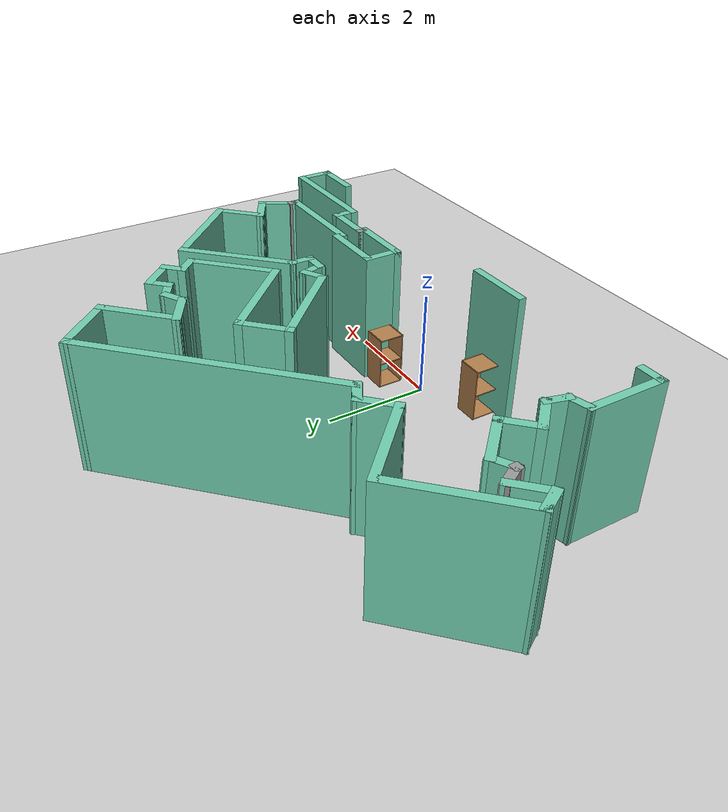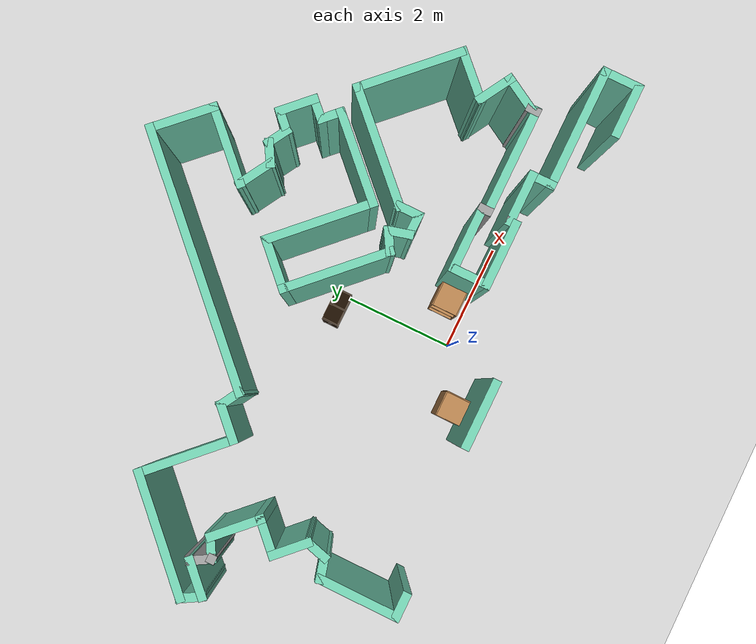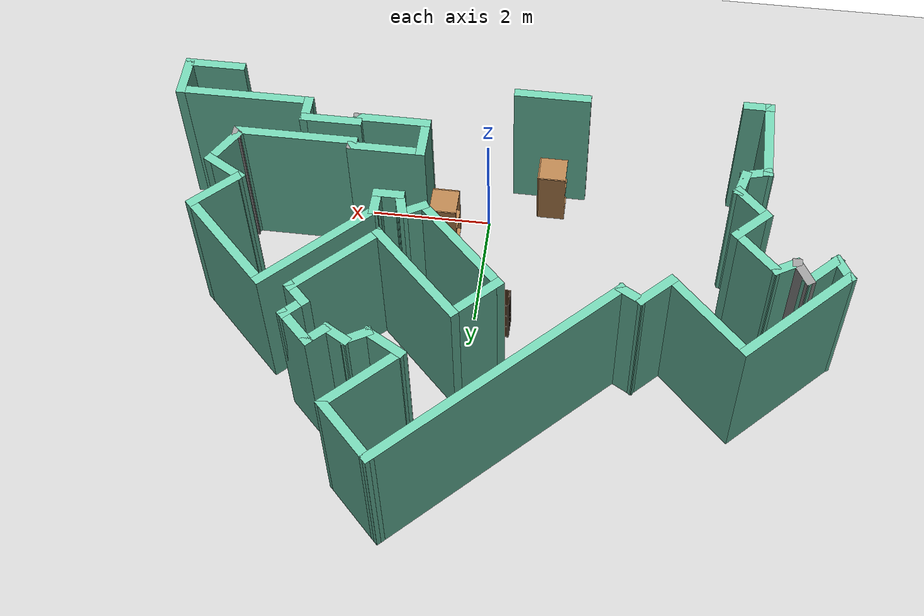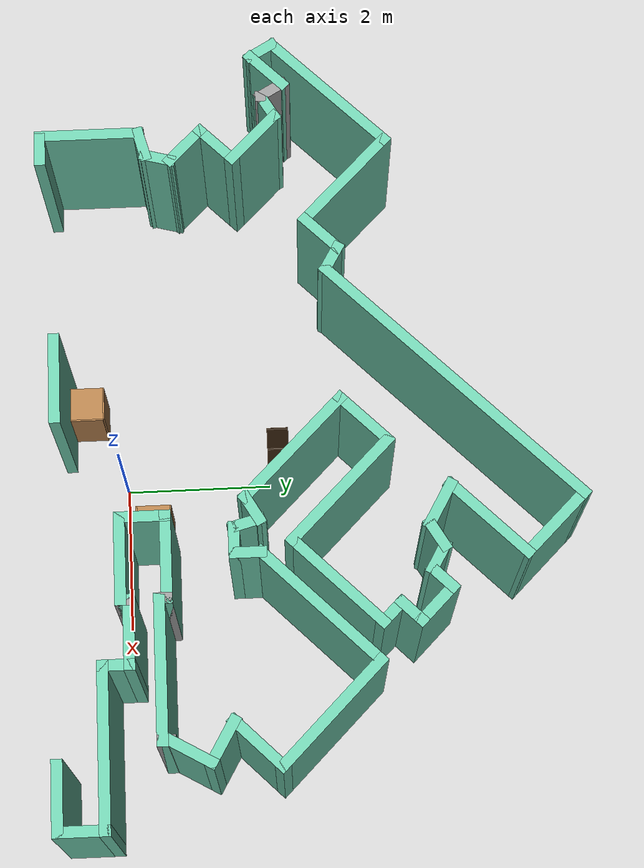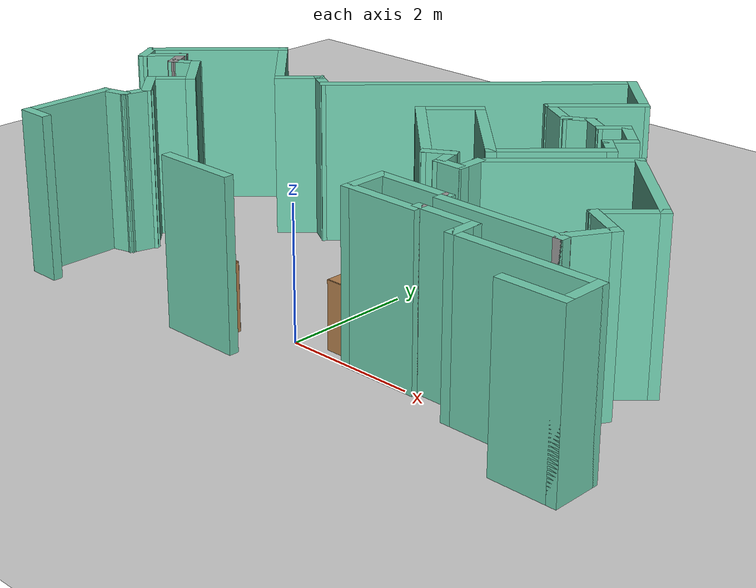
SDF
<sdf version="1.6">
 <world name="default">
  <model name="ground_plane">
   <static>1</static>
   <link name="link">
    <collision name="collision">
     <geometry><plane><normal>0 0 1</normal><size>100 100</size></plane></geometry>
     <surface><friction><ode><mu>100</mu><mu2>50</mu2></ode></friction></surface>
    </collision>
    <visual name="visual">
     <cast_shadows>0</cast_shadows>
     <geometry><plane><normal>0 0 1</normal><size>100 100</size></plane></geometry>
     <material>
      <script><uri>file://media/materials/scripts/gazebo.material</uri><name>Gazebo/Grey</name></script>
     </material>
    </visual>
   </link>
  </model>
  <model name="map_11">
   <pose>0.213911 -0.396014 0 0 -0 0</pose>
   <link name="Wall_0">
    <collision name="Wall_0_Collision">
     <geometry><box><size>4.75 0.15 2.5</size></box></geometry>
     <pose>0 0 1.25 0 -0 0</pose>
    </collision>
    <visual name="Wall_0_Visual">
     <pose>0 0 1.25 0 -0 0</pose>
     <geometry><box><size>4.75 0.15 2.5</size></box></geometry>
     <material>
      <script><uri>file://media/materials/scripts/gazebo.material</uri><name>Gazebo/Grey</name></script>
      <ambient>0.435294 0.796078 0.67451 1</ambient>
     </material>
     <meta><layer>0</layer></meta>
    </visual>
    <pose>-0.933367 4.89876 0 0 -0 -2.35619</pose>
   </link>
   <link name="Wall_1">
    <collision name="Wall_1_Collision">
     <geometry><box><size>0.5 0.15 2.5</size></box></geometry>
     <pose>0 0 1.25 0 -0 0</pose>
    </collision>
    <visual name="Wall_1_Visual">
     <pose>0 0 1.25 0 -0 0</pose>
     <geometry><box><size>0.5 0.15 2.5</size></box></geometry>
     <material>
      <script><uri>file://media/materials/scripts/gazebo.material</uri><name>Gazebo/Grey</name></script>
      <ambient>0.435294 0.796078 0.67451 1</ambient>
     </material>
     <meta><layer>0</layer></meta>
    </visual>
    <pose>-2.71127 3.35991 0 0 -0 2.61799</pose>
   </link>
   <link name="Wall_10">
    <collision name="Wall_10_Collision">
     <geometry><box><size>1 0.15 2.5</size></box></geometry>
     <pose>0 0 1.25 0 -0 0</pose>
    </collision>
    <visual name="Wall_10_Visual">
     <pose>0 0 1.25 0 -0 0</pose>
     <geometry><box><size>1 0.15 2.5</size></box></geometry>
     <material>
      <script><uri>file://media/materials/scripts/gazebo.material</uri><name>Gazebo/Grey</name></script>
      <ambient>0.435294 0.796078 0.67451 1</ambient>
     </material>
     <meta><layer>0</layer></meta>
    </visual>
    <pose>-4.52549 2.36212 0 0 -0 -0.785398</pose>
   </link>
   <link name="Wall_100">
    <collision name="Wall_100_Collision">
     <geometry><box><size>1.25445 0.15 2.5</size></box></geometry>
     <pose>0 0 1.25 0 -0 0</pose>
    </collision>
    <visual name="Wall_100_Visual">
     <pose>0 0 1.25 0 -0 0</pose>
     <geometry><box><size>1.25445 0.15 2.5</size></box></geometry>
     <material>
      <script><uri>file://media/materials/scripts/gazebo.material</uri><name>Gazebo/Grey</name></script>
      <ambient>0.435294 0.796078 0.67451 1</ambient>
     </material>
     <meta><layer>0</layer></meta>
    </visual>
    <pose>1.07905 6.13026 0 0 -0 2.34496</pose>
   </link>
   <link name="Wall_11">
    <collision name="Wall_11_Collision">
     <geometry><box><size>0.75 0.15 2.5</size></box></geometry>
     <pose>0 0 1.25 0 -0 0</pose>
    </collision>
    <visual name="Wall_11_Visual">
     <pose>0 0 1.25 0 -0 0</pose>
     <geometry><box><size>0.75 0.15 2.5</size></box></geometry>
     <material>
      <script><uri>file://media/materials/scripts/gazebo.material</uri><name>Gazebo/Grey</name></script>
      <ambient>0.435294 0.796078 0.67451 1</ambient>
     </material>
     <meta><layer>0</layer></meta>
    </visual>
    <pose>-4.4371 1.84947 0 0 -0 -2.35619</pose>
   </link>
   <link name="Wall_12">
    <collision name="Wall_12_Collision">
     <geometry><box><size>0.75 0.15 2.5</size></box></geometry>
     <pose>0 0 1.25 0 -0 0</pose>
    </collision>
    <visual name="Wall_12_Visual">
     <pose>0 0 1.25 0 -0 0</pose>
     <geometry><box><size>0.75 0.15 2.5</size></box></geometry>
     <material>
      <script><uri>file://media/materials/scripts/gazebo.material</uri><name>Gazebo/Grey</name></script>
      <ambient>0.435294 0.796078 0.67451 1</ambient>
     </material>
     <meta><layer>0</layer></meta>
    </visual>
    <pose>-4.4371 1.42521 0 0 -0 -0.785398</pose>
   </link>
   <link name="Wall_13">
    <collision name="Wall_13_Collision">
     <geometry><box><size>0.5 0.15 2.5</size></box></geometry>
     <pose>0 0 1.25 0 -0 0</pose>
    </collision>
    <visual name="Wall_13_Visual">
     <pose>0 0 1.25 0 -0 0</pose>
     <geometry><box><size>0.5 0.15 2.5</size></box></geometry>
     <material>
      <script><uri>file://media/materials/scripts/gazebo.material</uri><name>Gazebo/Grey</name></script>
      <ambient>0.435294 0.796078 0.67451 1</ambient>
     </material>
     <meta><layer>0</layer></meta>
    </visual>
    <pose>-4.27026 1.04404 0 0 -0 -1.8326</pose>
   </link>
   <link name="Wall_14">
    <collision name="Wall_14_Collision">
     <geometry><box><size>0.5 0.15 2.5</size></box></geometry>
     <pose>0 0 1.25 0 -0 0</pose>
    </collision>
    <visual name="Wall_14_Visual">
     <pose>0 0 1.25 0 -0 0</pose>
     <geometry><box><size>0.5 0.15 2.5</size></box></geometry>
     <material>
      <script><uri>file://media/materials/scripts/gazebo.material</uri><name>Gazebo/Grey</name></script>
      <ambient>0.435294 0.796078 0.67451 1</ambient>
     </material>
     <meta><layer>0</layer></meta>
    </visual>
    <pose>-4.48459 0.829708 0 0 -0 -2.87979</pose>
   </link>
   <link name="Wall_15">
    <collision name="Wall_15_Collision">
     <geometry><box><size>1.5 0.15 2.5</size></box></geometry>
     <pose>0 0 1.25 0 -0 0</pose>
    </collision>
    <visual name="Wall_15_Visual">
     <pose>0 0 1.25 0 -0 0</pose>
     <geometry><box><size>1.5 0.15 2.5</size></box></geometry>
     <material>
      <script><uri>file://media/materials/scripts/gazebo.material</uri><name>Gazebo/Grey</name></script>
      <ambient>0.435294 0.796078 0.67451 1</ambient>
     </material>
     <meta><layer>0</layer></meta>
    </visual>
    <pose>-4.65363 0.109414 0 0 -0 -1.5708</pose>
   </link>
   <link name="Wall_16">
    <collision name="Wall_16_Collision">
     <geometry><box><size>0.5 0.15 2.5</size></box></geometry>
     <pose>0 0 1.25 0 -0 0</pose>
    </collision>
    <visual name="Wall_16_Visual">
     <pose>0 0 1.25 0 -0 0</pose>
     <geometry><box><size>0.5 0.15 2.5</size></box></geometry>
     <material>
      <script><uri>file://media/materials/scripts/gazebo.material</uri><name>Gazebo/Grey</name></script>
      <ambient>0.435294 0.796078 0.67451 1</ambient>
     </material>
     <meta><layer>0</layer></meta>
    </visual>
    <pose>-4.47863 -0.565586 0 0 -0 0</pose>
   </link>
   <link name="Wall_2">
    <collision name="Wall_2_Collision">
     <geometry><box><size>0.75 0.15 2.5</size></box></geometry>
     <pose>0 0 1.25 0 -0 0</pose>
    </collision>
    <visual name="Wall_2_Visual">
     <pose>0 0 1.25 0 -0 0</pose>
     <geometry><box><size>0.75 0.15 2.5</size></box></geometry>
     <material>
      <script><uri>file://media/materials/scripts/gazebo.material</uri><name>Gazebo/Grey</name></script>
      <ambient>0.435294 0.796078 0.67451 1</ambient>
     </material>
     <meta><layer>0</layer></meta>
    </visual>
    <pose>-3.07495 3.23528 0 0 -0 -2.35619</pose>
   </link>
   <link name="Wall_3">
    <collision name="Wall_3_Collision">
     <geometry><box><size>1.75 0.15 2.5</size></box></geometry>
     <pose>0 0 1.25 0 -0 0</pose>
    </collision>
    <visual name="Wall_3_Visual">
     <pose>0 0 1.25 0 -0 0</pose>
     <geometry><box><size>1.75 0.15 2.5</size></box></geometry>
     <material>
      <script><uri>file://media/materials/scripts/gazebo.material</uri><name>Gazebo/Grey</name></script>
      <ambient>0.435294 0.796078 0.67451 1</ambient>
     </material>
     <meta><layer>0</layer></meta>
    </visual>
    <pose>-3.85277 3.58884 0 0 -0 2.35619</pose>
   </link>
   <link name="Wall_34">
    <collision name="Wall_34_Collision">
     <geometry><box><size>1.25 0.15 2.5</size></box></geometry>
     <pose>0 0 1.25 0 -0 0</pose>
    </collision>
    <visual name="Wall_34_Visual">
     <pose>0 0 1.25 0 -0 0</pose>
     <geometry><box><size>1.25 0.15 2.5</size></box></geometry>
     <material>
      <script><uri>file://media/materials/scripts/gazebo.material</uri><name>Gazebo/Grey</name></script>
      <ambient>0.435294 0.796078 0.67451 1</ambient>
     </material>
     <meta><layer>0</layer></meta>
    </visual>
    <pose>-1.16555 -0.406172 0 0 -0 0</pose>
   </link>
   <link name="Wall_4">
    <collision name="Wall_4_Collision">
     <geometry><box><size>2.25 0.15 2.5</size></box></geometry>
     <pose>0 0 1.25 0 -0 0</pose>
    </collision>
    <visual name="Wall_4_Visual">
     <pose>0 0 1.25 0 -0 0</pose>
     <geometry><box><size>2.25 0.15 2.5</size></box></geometry>
     <material>
      <script><uri>file://media/materials/scripts/gazebo.material</uri><name>Gazebo/Grey</name></script>
      <ambient>0.435294 0.796078 0.67451 1</ambient>
     </material>
     <meta><layer>0</layer></meta>
    </visual>
    <pose>-5.16092 3.41206 0 0 -0 -2.35619</pose>
   </link>
   <link name="Wall_5">
    <collision name="Wall_5_Collision">
     <geometry><box><size>0.5 0.15 2.5</size></box></geometry>
     <pose>0 0 1.25 0 -0 0</pose>
    </collision>
    <visual name="Wall_5_Visual">
     <pose>0 0 1.25 0 -0 0</pose>
     <geometry><box><size>0.5 0.15 2.5</size></box></geometry>
     <material>
      <script><uri>file://media/materials/scripts/gazebo.material</uri><name>Gazebo/Grey</name></script>
      <ambient>0.435294 0.796078 0.67451 1</ambient>
     </material>
     <meta><layer>0</layer></meta>
    </visual>
    <pose>-5.81588 2.51804 0 0 -0 -1.0472</pose>
   </link>
   <link name="Wall_6">
    <collision name="Wall_6_Collision">
     <geometry><box><size>0.75 0.15 2.5</size></box></geometry>
     <pose>0 0 1.25 0 -0 0</pose>
    </collision>
    <visual name="Wall_6_Visual">
     <pose>0 0 1.25 0 -0 0</pose>
     <geometry><box><size>0.75 0.15 2.5</size></box></geometry>
     <material>
      <script><uri>file://media/materials/scripts/gazebo.material</uri><name>Gazebo/Grey</name></script>
      <ambient>0.435294 0.796078 0.67451 1</ambient>
     </material>
     <meta><layer>0</layer></meta>
    </visual>
    <pose>-5.51625 2.57862 0 0 -0 0.785398</pose>
   </link>
   <link name="Wall_64">
    <collision name="Wall_64_Collision">
     <geometry><box><size>1 0.15 2.5</size></box></geometry>
     <pose>0 0 1.25 0 -0 0</pose>
    </collision>
    <visual name="Wall_64_Visual">
     <pose>0 0 1.25 0 -0 0</pose>
     <geometry><box><size>1 0.15 2.5</size></box></geometry>
     <material>
      <script><uri>file://media/materials/scripts/gazebo.material</uri><name>Gazebo/Grey</name></script>
      <ambient>0.435294 0.796078 0.67451 1</ambient>
     </material>
     <meta><layer>0</layer></meta>
    </visual>
    <pose>4.40604 -0.430291 0 0 -0 0</pose>
   </link>
   <link name="Wall_65">
    <collision name="Wall_65_Collision">
     <geometry><box><size>0.75 0.15 2.5</size></box></geometry>
     <pose>0 0 1.25 0 -0 0</pose>
    </collision>
    <visual name="Wall_65_Visual">
     <pose>0 0 1.25 0 -0 0</pose>
     <geometry><box><size>0.75 0.15 2.5</size></box></geometry>
     <material>
      <script><uri>file://media/materials/scripts/gazebo.material</uri><name>Gazebo/Grey</name></script>
      <ambient>0.435294 0.796078 0.67451 1</ambient>
     </material>
     <meta><layer>0</layer></meta>
    </visual>
    <pose>4.83104 -0.130291 0 0 -0 1.5708</pose>
   </link>
   <link name="Wall_66">
    <collision name="Wall_66_Collision">
     <geometry><box><size>2.25 0.15 2.5</size></box></geometry>
     <pose>0 0 1.25 0 -0 0</pose>
    </collision>
    <visual name="Wall_66_Visual">
     <pose>0 0 1.25 0 -0 0</pose>
     <geometry><box><size>2.25 0.15 2.5</size></box></geometry>
     <material>
      <script><uri>file://media/materials/scripts/gazebo.material</uri><name>Gazebo/Grey</name></script>
      <ambient>0.435294 0.796078 0.67451 1</ambient>
     </material>
     <meta><layer>0</layer></meta>
    </visual>
    <pose>3.78104 0.169709 0 0 -0 3.14159</pose>
   </link>
   <link name="Wall_67">
    <collision name="Wall_67_Collision">
     <geometry><box><size>0.5 0.15 2.5</size></box></geometry>
     <pose>0 0 1.25 0 -0 0</pose>
    </collision>
    <visual name="Wall_67_Visual">
     <pose>0 0 1.25 0 -0 0</pose>
     <geometry><box><size>0.5 0.15 2.5</size></box></geometry>
     <material>
      <script><uri>file://media/materials/scripts/gazebo.material</uri><name>Gazebo/Grey</name></script>
      <ambient>0.435294 0.796078 0.67451 1</ambient>
     </material>
     <meta><layer>0</layer></meta>
    </visual>
    <pose>2.73104 0.344709 0 0 -0 1.5708</pose>
   </link>
   <link name="Wall_68">
    <collision name="Wall_68_Collision">
     <geometry><box><size>1 0.15 2.5</size></box></geometry>
     <pose>0 0 1.25 0 -0 0</pose>
    </collision>
    <visual name="Wall_68_Visual">
     <pose>0 0 1.25 0 -0 0</pose>
     <geometry><box><size>1 0.15 2.5</size></box></geometry>
     <material>
      <script><uri>file://media/materials/scripts/gazebo.material</uri><name>Gazebo/Grey</name></script>
      <ambient>0.435294 0.796078 0.67451 1</ambient>
     </material>
     <meta><layer>0</layer></meta>
    </visual>
    <pose>2.30604 0.519709 0 0 -0 3.14159</pose>
   </link>
   <link name="Wall_69">
    <collision name="Wall_69_Collision">
     <geometry><box><size>0.25 0.15 2.5</size></box></geometry>
     <pose>0 0 1.25 0 -0 0</pose>
    </collision>
    <visual name="Wall_69_Visual">
     <pose>0 0 1.25 0 -0 0</pose>
     <geometry><box><size>0.25 0.15 2.5</size></box></geometry>
     <material>
      <script><uri>file://media/materials/scripts/gazebo.material</uri><name>Gazebo/Grey</name></script>
      <ambient>1 1 1 1</ambient>
     </material>
     <meta><layer>0</layer></meta>
    </visual>
    <pose>1.88104 0.469709 0 0 -0 -1.5708</pose>
   </link>
   <link name="Wall_7">
    <collision name="Wall_7_Collision">
     <geometry><box><size>0.5 0.15 2.5</size></box></geometry>
     <pose>0 0 1.25 0 -0 0</pose>
    </collision>
    <visual name="Wall_7_Visual">
     <pose>0 0 1.25 0 -0 0</pose>
     <geometry><box><size>0.5 0.15 2.5</size></box></geometry>
     <material>
      <script><uri>file://media/materials/scripts/gazebo.material</uri><name>Gazebo/Grey</name></script>
      <ambient>1 1 1 1</ambient>
     </material>
     <meta><layer>0</layer></meta>
    </visual>
    <pose>-5.21662 2.6392 0 0 -0 -1.0472</pose>
   </link>
   <link name="Wall_70">
    <collision name="Wall_70_Collision">
     <geometry><box><size>1.25 0.15 2.5</size></box></geometry>
     <pose>0 0 1.25 0 -0 0</pose>
    </collision>
    <visual name="Wall_70_Visual">
     <pose>0 0 1.25 0 -0 0</pose>
     <geometry><box><size>1.25 0.15 2.5</size></box></geometry>
     <material>
      <script><uri>file://media/materials/scripts/gazebo.material</uri><name>Gazebo/Grey</name></script>
      <ambient>0.435294 0.796078 0.67451 1</ambient>
     </material>
     <meta><layer>0</layer></meta>
    </visual>
    <pose>1.33104 0.419709 0 0 -0 3.14159</pose>
   </link>
   <link name="Wall_71">
    <collision name="Wall_71_Collision">
     <geometry><box><size>0.75 0.15 2.5</size></box></geometry>
     <pose>0 0 1.25 0 -0 0</pose>
    </collision>
    <visual name="Wall_71_Visual">
     <pose>0 0 1.25 0 -0 0</pose>
     <geometry><box><size>0.75 0.15 2.5</size></box></geometry>
     <material>
      <script><uri>file://media/materials/scripts/gazebo.material</uri><name>Gazebo/Grey</name></script>
      <ambient>0.435294 0.796078 0.67451 1</ambient>
     </material>
     <meta><layer>0</layer></meta>
    </visual>
    <pose>0.781039 0.719709 0 0 -0 1.5708</pose>
   </link>
   <link name="Wall_72">
    <collision name="Wall_72_Collision">
     <geometry><box><size>1.25 0.15 2.5</size></box></geometry>
     <pose>0 0 1.25 0 -0 0</pose>
    </collision>
    <visual name="Wall_72_Visual">
     <pose>0 0 1.25 0 -0 0</pose>
     <geometry><box><size>1.25 0.15 2.5</size></box></geometry>
     <material>
      <script><uri>file://media/materials/scripts/gazebo.material</uri><name>Gazebo/Grey</name></script>
      <ambient>0.435294 0.796078 0.67451 1</ambient>
     </material>
     <meta><layer>0</layer></meta>
    </visual>
    <pose>1.33104 1.01971 0 0 -0 0</pose>
   </link>
   <link name="Wall_75">
    <collision name="Wall_75_Collision">
     <geometry><box><size>0.25 0.15 2.5</size></box></geometry>
     <pose>0 0 1.25 0 -0 0</pose>
    </collision>
    <visual name="Wall_75_Visual">
     <pose>0 0 1.25 0 -0 0</pose>
     <geometry><box><size>0.25 0.15 2.5</size></box></geometry>
     <material>
      <script><uri>file://media/materials/scripts/gazebo.material</uri><name>Gazebo/Grey</name></script>
      <ambient>1 1 1 1</ambient>
     </material>
     <meta><layer>0</layer></meta>
    </visual>
    <pose>1.88104 0.969709 0 0 -0 -1.5708</pose>
   </link>
   <link name="Wall_76">
    <collision name="Wall_76_Collision">
     <geometry><box><size>2 0.15 2.5</size></box></geometry>
     <pose>0 0 1.25 0 -0 0</pose>
    </collision>
    <visual name="Wall_76_Visual">
     <pose>0 0 1.25 0 -0 0</pose>
     <geometry><box><size>2 0.15 2.5</size></box></geometry>
     <material>
      <script><uri>file://media/materials/scripts/gazebo.material</uri><name>Gazebo/Grey</name></script>
      <ambient>0.435294 0.796078 0.67451 1</ambient>
     </material>
     <meta><layer>0</layer></meta>
    </visual>
    <pose>2.80604 0.919709 0 0 -0 0</pose>
   </link>
   <link name="Wall_77">
    <collision name="Wall_77_Collision">
     <geometry><box><size>0.25 0.15 2.5</size></box></geometry>
     <pose>0 0 1.25 0 -0 0</pose>
    </collision>
    <visual name="Wall_77_Visual">
     <pose>0 0 1.25 0 -0 0</pose>
     <geometry><box><size>0.25 0.15 2.5</size></box></geometry>
     <material>
      <script><uri>file://media/materials/scripts/gazebo.material</uri><name>Gazebo/Grey</name></script>
      <ambient>1 1 1 1</ambient>
     </material>
     <meta><layer>0</layer></meta>
    </visual>
    <pose>3.73104 0.969709 0 0 -0 1.5708</pose>
   </link>
   <link name="Wall_78">
    <collision name="Wall_78_Collision">
     <geometry><box><size>0.75 0.15 2.5</size></box></geometry>
     <pose>0 0 1.25 0 -0 0</pose>
    </collision>
    <visual name="Wall_78_Visual">
     <pose>0 0 1.25 0 -0 0</pose>
     <geometry><box><size>0.75 0.15 2.5</size></box></geometry>
     <material>
      <script><uri>file://media/materials/scripts/gazebo.material</uri><name>Gazebo/Grey</name></script>
      <ambient>0.435294 0.796078 0.67451 1</ambient>
     </material>
     <meta><layer>0</layer></meta>
    </visual>
    <pose>3.88104 1.27952 0 0 -0 1.0472</pose>
   </link>
   <link name="Wall_79">
    <collision name="Wall_79_Collision">
     <geometry><box><size>0.75 0.15 2.5</size></box></geometry>
     <pose>0 0 1.25 0 -0 0</pose>
    </collision>
    <visual name="Wall_79_Visual">
     <pose>0 0 1.25 0 -0 0</pose>
     <geometry><box><size>0.75 0.15 2.5</size></box></geometry>
     <material>
      <script><uri>file://media/materials/scripts/gazebo.material</uri><name>Gazebo/Grey</name></script>
      <ambient>0.435294 0.796078 0.67451 1</ambient>
     </material>
     <meta><layer>0</layer></meta>
    </visual>
    <pose>3.77123 1.68932 0 0 -0 2.61799</pose>
   </link>
   <link name="Wall_8">
    <collision name="Wall_8_Collision">
     <geometry><box><size>0.15 0.15 2.5</size></box></geometry>
     <pose>0 0 1.25 0 -0 0</pose>
    </collision>
    <visual name="Wall_8_Visual">
     <pose>0 0 1.25 0 -0 0</pose>
     <geometry><box><size>0.15 0.15 2.5</size></box></geometry>
     <material>
      <script><uri>file://media/materials/scripts/gazebo.material</uri><name>Gazebo/Grey</name></script>
      <ambient>1 1 1 1</ambient>
     </material>
     <meta><layer>0</layer></meta>
    </visual>
    <pose>-5.12912 2.48764 0 0 -0 0</pose>
   </link>
   <link name="Wall_80">
    <collision name="Wall_80_Collision">
     <geometry><box><size>1 0.15 2.5</size></box></geometry>
     <pose>0 0 1.25 0 -0 0</pose>
    </collision>
    <visual name="Wall_80_Visual">
     <pose>0 0 1.25 0 -0 0</pose>
     <geometry><box><size>1 0.15 2.5</size></box></geometry>
     <material>
      <script><uri>file://media/materials/scripts/gazebo.material</uri><name>Gazebo/Grey</name></script>
      <ambient>0.435294 0.796078 0.67451 1</ambient>
     </material>
     <meta><layer>0</layer></meta>
    </visual>
    <pose>3.81194 2.13985 0 0 -0 0.785398</pose>
   </link>
   <link name="Wall_82">
    <collision name="Wall_82_Collision">
     <geometry><box><size>2 0.15 2.5</size></box></geometry>
     <pose>0 0 1.25 0 -0 0</pose>
    </collision>
    <visual name="Wall_82_Visual">
     <pose>0 0 1.25 0 -0 0</pose>
     <geometry><box><size>2 0.15 2.5</size></box></geometry>
     <material>
      <script><uri>file://media/materials/scripts/gazebo.material</uri><name>Gazebo/Grey</name></script>
      <ambient>0.435294 0.796078 0.67451 1</ambient>
     </material>
     <meta><layer>0</layer></meta>
    </visual>
    <pose>3.45839 3.09444 0 0 -0 2.35619</pose>
   </link>
   <link name="Wall_83">
    <collision name="Wall_83_Collision">
     <geometry><box><size>2.25 0.15 2.5</size></box></geometry>
     <pose>0 0 1.25 0 -0 0</pose>
    </collision>
    <visual name="Wall_83_Visual">
     <pose>0 0 1.25 0 -0 0</pose>
     <geometry><box><size>2.25 0.15 2.5</size></box></geometry>
     <material>
      <script><uri>file://media/materials/scripts/gazebo.material</uri><name>Gazebo/Grey</name></script>
      <ambient>0.435294 0.796078 0.67451 1</ambient>
     </material>
     <meta><layer>0</layer></meta>
    </visual>
    <pose>2.06185 3.00605 0 0 -0 -2.35619</pose>
   </link>
   <link name="Wall_84">
    <collision name="Wall_84_Collision">
     <geometry><box><size>0.5 0.15 2.5</size></box></geometry>
     <pose>0 0 1.25 0 -0 0</pose>
    </collision>
    <visual name="Wall_84_Visual">
     <pose>0 0 1.25 0 -0 0</pose>
     <geometry><box><size>0.5 0.15 2.5</size></box></geometry>
     <material>
      <script><uri>file://media/materials/scripts/gazebo.material</uri><name>Gazebo/Grey</name></script>
      <ambient>0.435294 0.796078 0.67451 1</ambient>
     </material>
     <meta><layer>0</layer></meta>
    </visual>
    <pose>1.31939 2.08859 0 0 -0 -1.5708</pose>
   </link>
   <link name="Wall_85">
    <collision name="Wall_85_Collision">
     <geometry><box><size>0.5 0.15 2.5</size></box></geometry>
     <pose>0 0 1.25 0 -0 0</pose>
    </collision>
    <visual name="Wall_85_Visual">
     <pose>0 0 1.25 0 -0 0</pose>
     <geometry><box><size>0.5 0.15 2.5</size></box></geometry>
     <material>
      <script><uri>file://media/materials/scripts/gazebo.material</uri><name>Gazebo/Grey</name></script>
      <ambient>0.435294 0.796078 0.67451 1</ambient>
     </material>
     <meta><layer>0</layer></meta>
    </visual>
    <pose>1.14439 1.91359 0 0 -0 3.14159</pose>
   </link>
   <link name="Wall_86">
    <collision name="Wall_86_Collision">
     <geometry><box><size>0.5 0.15 2.5</size></box></geometry>
     <pose>0 0 1.25 0 -0 0</pose>
    </collision>
    <visual name="Wall_86_Visual">
     <pose>0 0 1.25 0 -0 0</pose>
     <geometry><box><size>0.5 0.15 2.5</size></box></geometry>
     <material>
      <script><uri>file://media/materials/scripts/gazebo.material</uri><name>Gazebo/Grey</name></script>
      <ambient>0.435294 0.796078 0.67451 1</ambient>
     </material>
     <meta><layer>0</layer></meta>
    </visual>
    <pose>0.9241 2.08263 0 0 -0 1.8326</pose>
   </link>
   <link name="Wall_87">
    <collision name="Wall_87_Collision">
     <geometry><box><size>0.5 0.15 2.5</size></box></geometry>
     <pose>0 0 1.25 0 -0 0</pose>
    </collision>
    <visual name="Wall_87_Visual">
     <pose>0 0 1.25 0 -0 0</pose>
     <geometry><box><size>0.5 0.15 2.5</size></box></geometry>
     <material>
      <script><uri>file://media/materials/scripts/gazebo.material</uri><name>Gazebo/Grey</name></script>
      <ambient>0.435294 0.796078 0.67451 1</ambient>
     </material>
     <meta><layer>0</layer></meta>
    </visual>
    <pose>0.727252 2.16416 0 0 -0 -2.61799</pose>
   </link>
   <link name="Wall_88">
    <collision name="Wall_88_Collision">
     <geometry><box><size>2 0.15 2.5</size></box></geometry>
     <pose>0 0 1.25 0 -0 0</pose>
    </collision>
    <visual name="Wall_88_Visual">
     <pose>0 0 1.25 0 -0 0</pose>
     <geometry><box><size>2 0.15 2.5</size></box></geometry>
     <material>
      <script><uri>file://media/materials/scripts/gazebo.material</uri><name>Gazebo/Grey</name></script>
      <ambient>0.435294 0.796078 0.67451 1</ambient>
     </material>
     <meta><layer>0</layer></meta>
    </visual>
    <pose>-0.078377 2.73074 0 0 -0 2.35619</pose>
   </link>
   <link name="Wall_89">
    <collision name="Wall_89_Collision">
     <geometry><box><size>1 0.15 2.5</size></box></geometry>
     <pose>0 0 1.25 0 -0 0</pose>
    </collision>
    <visual name="Wall_89_Visual">
     <pose>0 0 1.25 0 -0 0</pose>
     <geometry><box><size>1 0.15 2.5</size></box></geometry>
     <material>
      <script><uri>file://media/materials/scripts/gazebo.material</uri><name>Gazebo/Grey</name></script>
      <ambient>0.435294 0.796078 0.67451 1</ambient>
     </material>
     <meta><layer>0</layer></meta>
    </visual>
    <pose>-0.43193 3.68533 0 0 -0 0.785398</pose>
   </link>
   <link name="Wall_9">
    <collision name="Wall_9_Collision">
     <geometry><box><size>0.5 0.15 2.5</size></box></geometry>
     <pose>0 0 1.25 0 -0 0</pose>
    </collision>
    <visual name="Wall_9_Visual">
     <pose>0 0 1.25 0 -0 0</pose>
     <geometry><box><size>0.5 0.15 2.5</size></box></geometry>
     <material>
      <script><uri>file://media/materials/scripts/gazebo.material</uri><name>Gazebo/Grey</name></script>
      <ambient>0.435294 0.796078 0.67451 1</ambient>
     </material>
     <meta><layer>0</layer></meta>
    </visual>
    <pose>-4.97756 2.57514 0 0 -0 0.523599</pose>
   </link>
   <link name="Wall_90">
    <collision name="Wall_90_Collision">
     <geometry><box><size>2 0.15 2.5</size></box></geometry>
     <pose>0 0 1.25 0 -0 0</pose>
    </collision>
    <visual name="Wall_90_Visual">
     <pose>0 0 1.25 0 -0 0</pose>
     <geometry><box><size>2 0.15 2.5</size></box></geometry>
     <material>
      <script><uri>file://media/materials/scripts/gazebo.material</uri><name>Gazebo/Grey</name></script>
      <ambient>0.435294 0.796078 0.67451 1</ambient>
     </material>
     <meta><layer>0</layer></meta>
    </visual>
    <pose>0.522664 3.33178 0 0 -0 -0.785398</pose>
   </link>
   <link name="Wall_91">
    <collision name="Wall_91_Collision">
     <geometry><box><size>1.75 0.15 2.5</size></box></geometry>
     <pose>0 0 1.25 0 -0 0</pose>
    </collision>
    <visual name="Wall_91_Visual">
     <pose>0 0 1.25 0 -0 0</pose>
     <geometry><box><size>1.75 0.15 2.5</size></box></geometry>
     <material>
      <script><uri>file://media/materials/scripts/gazebo.material</uri><name>Gazebo/Grey</name></script>
      <ambient>0.435294 0.796078 0.67451 1</ambient>
     </material>
     <meta><layer>0</layer></meta>
    </visual>
    <pose>1.74242 3.24339 0 0 -0 0.785398</pose>
   </link>
   <link name="Wall_92">
    <collision name="Wall_92_Collision">
     <geometry><box><size>0.5 0.15 2.5</size></box></geometry>
     <pose>0 0 1.25 0 -0 0</pose>
    </collision>
    <visual name="Wall_92_Visual">
     <pose>0 0 1.25 0 -0 0</pose>
     <geometry><box><size>0.5 0.15 2.5</size></box></geometry>
     <material>
      <script><uri>file://media/materials/scripts/gazebo.material</uri><name>Gazebo/Grey</name></script>
      <ambient>0.435294 0.796078 0.67451 1</ambient>
     </material>
     <meta><layer>0</layer></meta>
    </visual>
    <pose>2.18437 3.93282 0 0 -0 2.35619</pose>
   </link>
   <link name="Wall_93">
    <collision name="Wall_93_Collision">
     <geometry><box><size>0.5 0.15 2.5</size></box></geometry>
     <pose>0 0 1.25 0 -0 0</pose>
    </collision>
    <visual name="Wall_93_Visual">
     <pose>0 0 1.25 0 -0 0</pose>
     <geometry><box><size>0.5 0.15 2.5</size></box></geometry>
     <material>
      <script><uri>file://media/materials/scripts/gazebo.material</uri><name>Gazebo/Grey</name></script>
      <ambient>0.435294 0.796078 0.67451 1</ambient>
     </material>
     <meta><layer>0</layer></meta>
    </visual>
    <pose>2.18437 4.1803 0 0 -0 0.785398</pose>
   </link>
   <link name="Wall_94">
    <collision name="Wall_94_Collision">
     <geometry><box><size>0.75 0.15 2.5</size></box></geometry>
     <pose>0 0 1.25 0 -0 0</pose>
    </collision>
    <visual name="Wall_94_Visual">
     <pose>0 0 1.25 0 -0 0</pose>
     <geometry><box><size>0.75 0.15 2.5</size></box></geometry>
     <material>
      <script><uri>file://media/materials/scripts/gazebo.material</uri><name>Gazebo/Grey</name></script>
      <ambient>0.435294 0.796078 0.67451 1</ambient>
     </material>
     <meta><layer>0</layer></meta>
    </visual>
    <pose>2.09598 4.51618 0 0 -0 2.35619</pose>
   </link>
   <link name="Wall_95">
    <collision name="Wall_95_Collision">
     <geometry><box><size>0.5 0.15 2.5</size></box></geometry>
     <pose>0 0 1.25 0 -0 0</pose>
    </collision>
    <visual name="Wall_95_Visual">
     <pose>0 0 1.25 0 -0 0</pose>
     <geometry><box><size>0.5 0.15 2.5</size></box></geometry>
     <material>
      <script><uri>file://media/materials/scripts/gazebo.material</uri><name>Gazebo/Grey</name></script>
      <ambient>0.435294 0.796078 0.67451 1</ambient>
     </material>
     <meta><layer>0</layer></meta>
    </visual>
    <pose>1.7601 4.60457 0 0 -0 -2.35619</pose>
   </link>
   <link name="Wall_96">
    <collision name="Wall_96_Collision">
     <geometry><box><size>0.5 0.15 2.5</size></box></geometry>
     <pose>0 0 1.25 0 -0 0</pose>
    </collision>
    <visual name="Wall_96_Visual">
     <pose>0 0 1.25 0 -0 0</pose>
     <geometry><box><size>0.5 0.15 2.5</size></box></geometry>
     <material>
      <script><uri>file://media/materials/scripts/gazebo.material</uri><name>Gazebo/Grey</name></script>
      <ambient>0.435294 0.796078 0.67451 1</ambient>
     </material>
     <meta><layer>0</layer></meta>
    </visual>
    <pose>1.4848 4.56833 0 0 -0 2.61799</pose>
   </link>
   <link name="Wall_97">
    <collision name="Wall_97_Collision">
     <geometry><box><size>0.5 0.15 2.5</size></box></geometry>
     <pose>0 0 1.25 0 -0 0</pose>
    </collision>
    <visual name="Wall_97_Visual">
     <pose>0 0 1.25 0 -0 0</pose>
     <geometry><box><size>0.5 0.15 2.5</size></box></geometry>
     <material>
      <script><uri>file://media/materials/scripts/gazebo.material</uri><name>Gazebo/Grey</name></script>
      <ambient>0.435294 0.796078 0.67451 1</ambient>
     </material>
     <meta><layer>0</layer></meta>
    </visual>
    <pose>1.18169 4.56833 0 0 -0 -2.61799</pose>
   </link>
   <link name="Wall_98">
    <collision name="Wall_98_Collision">
     <geometry><box><size>0.75 0.15 2.5</size></box></geometry>
     <pose>0 0 1.25 0 -0 0</pose>
    </collision>
    <visual name="Wall_98_Visual">
     <pose>0 0 1.25 0 -0 0</pose>
     <geometry><box><size>0.75 0.15 2.5</size></box></geometry>
     <material>
      <script><uri>file://media/materials/scripts/gazebo.material</uri><name>Gazebo/Grey</name></script>
      <ambient>0.435294 0.796078 0.67451 1</ambient>
     </material>
     <meta><layer>0</layer></meta>
    </visual>
    <pose>0.770332 4.63083 0 0 -0 2.61799</pose>
   </link>
   <link name="Wall_99">
    <collision name="Wall_99_Collision">
     <geometry><box><size>1.5 0.15 2.5</size></box></geometry>
     <pose>0 0 1.25 0 -0 0</pose>
    </collision>
    <visual name="Wall_99_Visual">
     <pose>0 0 1.25 0 -0 0</pose>
     <geometry><box><size>1.5 0.15 2.5</size></box></geometry>
     <material>
      <script><uri>file://media/materials/scripts/gazebo.material</uri><name>Gazebo/Grey</name></script>
      <ambient>0.435294 0.796078 0.67451 1</ambient>
     </material>
     <meta><layer>0</layer></meta>
    </visual>
    <pose>0.987822 5.25812 0 0 -0 0.785398</pose>
   </link>
   <static>1</static>
  </model>
  <model name="6_Cube_StorageE">
   <link name="Wall_0">
    <pose>0 0 0.01 0 -0 0</pose>
    <inertial>
     <mass>1.6201</mass>
     <inertia><ixx>0.0119</ixx><iyy>0.0631</iyy><izz>0.0513</izz><ixy>0</ixy><ixz>0</ixz><iyz>0</iyz></inertia>
    </inertial>
    <collision name="Wall_0_Collision"><geometry><box><size>0.616 0.296 0.02</size></box></geometry></collision>
    <visual name="Wall_0_Visual">
     <geometry><box><size>0.616 0.296 0.02</size></box></geometry>
     <material>
      <script><uri>file://media/materials/scripts/gazebo.material</uri><name>Gazebo/Grey</name></script>
      <ambient>0.105882 0.0509804 0 1</ambient>
     </material>
    </visual>
   </link>
   <joint name="0_2" type="fixed">
    <pose>-0.308 0 0 0 -0 0</pose>
    <parent>Wall_2</parent>
    <child>Wall_0</child>
    <axis>
     <xyz>1 0 0</xyz>
     <use_parent_model_frame>0</use_parent_model_frame>
     <limit><lower>-1e+16</lower><upper>1e+16</upper></limit>
    </axis>
   </joint>
   <joint name="0_12" type="fixed">
    <parent>Wall_12</parent>
    <child>Wall_0</child>
    <axis>
     <xyz>0 0 1</xyz>
     <use_parent_model_frame>0</use_parent_model_frame>
     <limit><lower>-1e+16</lower><upper>1e+16</upper></limit>
    </axis>
   </joint>
   <joint name="0_4" type="fixed">
    <pose>0.308 0 0 0 -0 0</pose>
    <parent>Wall_4</parent>
    <child>Wall_0</child>
    <axis>
     <xyz>1 0 0</xyz>
     <use_parent_model_frame>0</use_parent_model_frame>
     <limit><lower>-1e+16</lower><upper>1e+16</upper></limit>
    </axis>
   </joint>
   <link name="Wall_10">
    <pose>0 0 0.61 0 -0 0</pose>
    <inertial>
     <mass>1.6201</mass>
     <inertia><ixx>0.0119</ixx><iyy>0.0631</iyy><izz>0.0513</izz><ixy>0</ixy><ixz>0</ixz><iyz>0</iyz></inertia>
    </inertial>
    <collision name="Wall_10_Collision"><geometry><box><size>0.616 0.296 0.02</size></box></geometry></collision>
    <visual name="Wall_10_Visual">
     <geometry><box><size>0.616 0.296 0.02</size></box></geometry>
     <material>
      <script><uri>file://media/materials/scripts/gazebo.material</uri><name>Gazebo/Grey</name></script>
      <ambient>0.105882 0.0509804 0 1</ambient>
     </material>
    </visual>
   </link>
   <joint name="10_2" type="fixed">
    <pose>-0.308 0 0 0 -0 0</pose>
    <parent>Wall_2</parent>
    <child>Wall_10</child>
    <axis>
     <xyz>1 0 0</xyz>
     <use_parent_model_frame>0</use_parent_model_frame>
     <limit><lower>-1e+16</lower><upper>1e+16</upper></limit>
    </axis>
   </joint>
   <joint name="10_12" type="fixed">
    <parent>Wall_12</parent>
    <child>Wall_10</child>
    <axis>
     <xyz>0 0 1</xyz>
     <use_parent_model_frame>0</use_parent_model_frame>
     <limit><lower>-1e+16</lower><upper>1e+16</upper></limit>
    </axis>
   </joint>
   <joint name="10_4" type="fixed">
    <pose>0.308 0 0 0 -0 0</pose>
    <parent>Wall_4</parent>
    <child>Wall_10</child>
    <axis>
     <xyz>1 0 0</xyz>
     <use_parent_model_frame>0</use_parent_model_frame>
     <limit><lower>-1e+16</lower><upper>1e+16</upper></limit>
    </axis>
   </joint>
   <link name="Wall_12">
    <pose>0 0 0.4575 0 -0 0</pose>
    <inertial>
     <mass>2.4065</mass>
     <inertia><ixx>0.0177</ixx><iyy>0.1855</iyy><izz>0.168</izz><ixy>0</ixy><ixz>0</ixz><iyz>0</iyz></inertia>
    </inertial>
    <collision name="Wall_12_Collision"><geometry><box><size>0.02 0.296 0.915</size></box></geometry></collision>
    <visual name="Wall_12_Visual">
     <geometry><box><size>0.02 0.296 0.915</size></box></geometry>
     <material>
      <script><uri>file://media/materials/scripts/gazebo.material</uri><name>Gazebo/Grey</name></script>
      <ambient>0.105882 0.0509804 0 1</ambient>
     </material>
    </visual>
   </link>
   <link name="Wall_2">
    <pose>-0.298 0 0.4575 0 -0 0</pose>
    <inertial>
     <mass>2.4065</mass>
     <inertia><ixx>0.0177</ixx><iyy>0.1855</iyy><izz>0.168</izz><ixy>0</ixy><ixz>0</ixz><iyz>0</iyz></inertia>
    </inertial>
    <collision name="Wall_2_Collision"><geometry><box><size>0.02 0.296 0.915</size></box></geometry></collision>
    <visual name="Wall_2_Visual">
     <geometry><box><size>0.02 0.296 0.915</size></box></geometry>
     <material>
      <script><uri>file://media/materials/scripts/gazebo.material</uri><name>Gazebo/Grey</name></script>
      <ambient>0.105882 0.0509804 0 1</ambient>
     </material>
    </visual>
   </link>
   <link name="Wall_4">
    <pose>0.298 0 0.4575 0 -0 0</pose>
    <inertial>
     <mass>2.4065</mass>
     <inertia><ixx>0.0177</ixx><iyy>0.1855</iyy><izz>0.168</izz><ixy>0</ixy><ixz>0</ixz><iyz>0</iyz></inertia>
    </inertial>
    <collision name="Wall_4_Collision"><geometry><box><size>0.02 0.296 0.915</size></box></geometry></collision>
    <visual name="Wall_4_Visual">
     <geometry><box><size>0.02 0.296 0.915</size></box></geometry>
     <material>
      <script><uri>file://media/materials/scripts/gazebo.material</uri><name>Gazebo/Grey</name></script>
      <ambient>0.105882 0.0509804 0 1</ambient>
     </material>
    </visual>
   </link>
   <link name="Wall_6">
    <pose>0 0 0.905 0 -0 0</pose>
    <inertial>
     <mass>1.6201</mass>
     <inertia><ixx>0.0119</ixx><iyy>0.0631</iyy><izz>0.0513</izz><ixy>0</ixy><ixz>0</ixz><iyz>0</iyz></inertia>
    </inertial>
    <collision name="Wall_6_Collision"><geometry><box><size>0.616 0.296 0.02</size></box></geometry></collision>
    <visual name="Wall_6_Visual">
     <geometry><box><size>0.616 0.296 0.02</size></box></geometry>
     <material>
      <script><uri>file://media/materials/scripts/gazebo.material</uri><name>Gazebo/Grey</name></script>
      <ambient>0.105882 0.0509804 0 1</ambient>
     </material>
    </visual>
   </link>
   <joint name="6_2" type="fixed">
    <pose>-0.308 0 0 0 -0 0</pose>
    <parent>Wall_2</parent>
    <child>Wall_6</child>
    <axis>
     <xyz>2 0 0</xyz>
     <use_parent_model_frame>0</use_parent_model_frame>
     <limit><lower>-1e+16</lower><upper>1e+16</upper></limit>
    </axis>
   </joint>
   <joint name="6_12" type="fixed">
    <parent>Wall_12</parent>
    <child>Wall_6</child>
    <axis>
     <xyz>0 0 1</xyz>
     <use_parent_model_frame>0</use_parent_model_frame>
     <limit><lower>-1e+16</lower><upper>1e+16</upper></limit>
    </axis>
   </joint>
   <joint name="6_4" type="fixed">
    <pose>0.308 0 0 0 -0 0</pose>
    <parent>Wall_4</parent>
    <child>Wall_6</child>
    <axis>
     <xyz>1 0 0</xyz>
     <use_parent_model_frame>0</use_parent_model_frame>
     <limit><lower>-1e+16</lower><upper>1e+16</upper></limit>
    </axis>
   </joint>
   <link name="Wall_8">
    <pose>0 0 0.305 0 -0 0</pose>
    <inertial>
     <mass>1.6201</mass>
     <inertia><ixx>0.0119</ixx><iyy>0.0631</iyy><izz>0.0513</izz><ixy>0</ixy><ixz>0</ixz><iyz>0</iyz></inertia>
    </inertial>
    <collision name="Wall_8_Collision"><geometry><box><size>0.616 0.296 0.02</size></box></geometry></collision>
    <visual name="Wall_8_Visual">
     <geometry><box><size>0.616 0.296 0.02</size></box></geometry>
     <material>
      <script><uri>file://media/materials/scripts/gazebo.material</uri><name>Gazebo/Grey</name></script>
      <ambient>0.105882 0.0509804 0 1</ambient>
     </material>
    </visual>
   </link>
   <joint name="8_2" type="fixed">
    <pose>-0.308 0 0 0 -0 0</pose>
    <parent>Wall_2</parent>
    <child>Wall_8</child>
    <axis>
     <xyz>1 0 0</xyz>
     <use_parent_model_frame>0</use_parent_model_frame>
     <limit><lower>-1e+16</lower><upper>1e+16</upper></limit>
    </axis>
   </joint>
   <joint name="8_12" type="fixed">
    <parent>Wall_12</parent>
    <child>Wall_8</child>
    <axis>
     <xyz>0 0 1</xyz>
     <use_parent_model_frame>0</use_parent_model_frame>
     <limit><lower>-1e+16</lower><upper>1e+16</upper></limit>
    </axis>
   </joint>
   <joint name="8_4" type="fixed">
    <pose>0.308 0 0 0 -0 0</pose>
    <parent>Wall_4</parent>
    <child>Wall_8</child>
    <axis>
     <xyz>1 0 0</xyz>
     <use_parent_model_frame>0</use_parent_model_frame>
     <limit><lower>-1e+16</lower><upper>1e+16</upper></limit>
    </axis>
   </joint>
   <static>1</static>
   <pose>-0.295746 2.13611 0 0 -0 0</pose>
  </model>
  <model name="cabinet_2">
   <static>1</static>
   <link name="cabinet_bottom_plate">
    <inertial>
     <pose>0 0 -1 0 -0 0</pose>
     <inertia><ixx>2.05</ixx><ixy>0</ixy><ixz>0</ixz><iyy>2.05</iyy><iyz>0</iyz><izz>2.05</izz></inertia>
     <mass>25</mass>
    </inertial>
    <collision name="cabinet_bottom_plate_geom">
     <pose>0 0 0.01 0 -0 0</pose>
     <geometry><box><size>0.45 0.45 0.02</size></box></geometry>
    </collision>
    <visual name="cabinet_bottom_plate_geom_visual">
     <pose>0 0 0.01 0 -0 0</pose>
     <geometry><box><size>0.45 0.45 0.02</size></box></geometry>
     <material>
      <script><uri>file://media/materials/scripts/gazebo.material</uri><name>Gazebo/Wood</name></script>
     </material>
    </visual>
    <collision name="cabinet_bottom_plate_geom_cabinet_back_plate">
     <pose>0.235 0 0.51 0 -0 0</pose>
     <geometry><box><size>0.02 0.45 1.02</size></box></geometry>
    </collision>
    <visual name="cabinet_bottom_plate_geom_cabinet_back_plate_visual">
     <pose>0.235 0 0.51 0 -0 0</pose>
     <geometry><box><size>0.02 0.45 1.02</size></box></geometry>
     <material>
      <script><uri>file://media/materials/scripts/gazebo.material</uri><name>Gazebo/Wood</name></script>
     </material>
    </visual>
    <collision name="cabinet_bottom_plate_geom_cabinet_left_plate">
     <pose>0 0.235 0.51 0 -0 0</pose>
     <geometry><box><size>0.45 0.02 1.02</size></box></geometry>
    </collision>
    <visual name="cabinet_bottom_plate_geom_cabinet_left_plate_visual">
     <pose>0 0.235 0.51 0 -0 0</pose>
     <geometry><box><size>0.45 0.02 1.02</size></box></geometry>
     <material>
      <script><uri>file://media/materials/scripts/gazebo.material</uri><name>Gazebo/Wood</name></script>
     </material>
    </visual>
    <collision name="cabinet_bottom_plate_geom_cabinet_middle_plate">
     <pose>0 0 0.51 0 -0 0</pose>
     <geometry><box><size>0.45 0.45 0.02</size></box></geometry>
    </collision>
    <visual name="cabinet_bottom_plate_geom_cabinet_middle_plate_visual">
     <pose>0 0 0.51 0 -0 0</pose>
     <geometry><box><size>0.45 0.45 0.02</size></box></geometry>
     <material>
      <script><uri>file://media/materials/scripts/gazebo.material</uri><name>Gazebo/Wood</name></script>
     </material>
    </visual>
    <collision name="cabinet_bottom_plate_geom_cabinet_right_plate">
     <pose>0 -0.235 0.51 0 -0 0</pose>
     <geometry><box><size>0.45 0.02 1.02</size></box></geometry>
    </collision>
    <visual name="cabinet_bottom_plate_geom_cabinet_right_plate_visual">
     <pose>0 -0.235 0.51 0 -0 0</pose>
     <geometry><box><size>0.45 0.02 1.02</size></box></geometry>
     <material>
      <script><uri>file://media/materials/scripts/gazebo.material</uri><name>Gazebo/Wood</name></script>
     </material>
    </visual>
    <collision name="cabinet_bottom_plate_geom_cabinet_top_plate">
     <pose>0 0 1.01 0 -0 0</pose>
     <geometry><box><size>0.45 0.45 0.02</size></box></geometry>
    </collision>
    <visual name="cabinet_bottom_plate_geom_cabinet_top_plate_visual">
     <pose>0 0 1.01 0 -0 0</pose>
     <geometry><box><size>0.45 0.45 0.02</size></box></geometry>
     <material>
      <script><uri>file://media/materials/scripts/gazebo.material</uri><name>Gazebo/Wood</name></script>
     </material>
    </visual>
   </link>
   <pose>-1.02986 -0.505739 0 0 -0 0</pose>
  </model>
  <model name="cabinet_3">
   <static>1</static>
   <link name="cabinet_bottom_plate">
    <inertial>
     <pose>0 0 -1 0 -0 0</pose>
     <inertia><ixx>2.05</ixx><ixy>0</ixy><ixz>0</ixz><iyy>2.05</iyy><iyz>0</iyz><izz>2.05</izz></inertia>
     <mass>25</mass>
    </inertial>
    <collision name="cabinet_bottom_plate_geom">
     <pose>0 0 0.01 0 -0 0</pose>
     <geometry><box><size>0.45 0.45 0.02</size></box></geometry>
    </collision>
    <visual name="cabinet_bottom_plate_geom_visual">
     <pose>0 0 0.01 0 -0 0</pose>
     <geometry><box><size>0.45 0.45 0.02</size></box></geometry>
     <material>
      <script><uri>file://media/materials/scripts/gazebo.material</uri><name>Gazebo/Wood</name></script>
     </material>
    </visual>
    <collision name="cabinet_bottom_plate_geom_cabinet_back_plate">
     <pose>0.235 0 0.51 0 -0 0</pose>
     <geometry><box><size>0.02 0.45 1.02</size></box></geometry>
    </collision>
    <visual name="cabinet_bottom_plate_geom_cabinet_back_plate_visual">
     <pose>0.235 0 0.51 0 -0 0</pose>
     <geometry><box><size>0.02 0.45 1.02</size></box></geometry>
     <material>
      <script><uri>file://media/materials/scripts/gazebo.material</uri><name>Gazebo/Wood</name></script>
     </material>
    </visual>
    <collision name="cabinet_bottom_plate_geom_cabinet_left_plate">
     <pose>0 0.235 0.51 0 -0 0</pose>
     <geometry><box><size>0.45 0.02 1.02</size></box></geometry>
    </collision>
    <visual name="cabinet_bottom_plate_geom_cabinet_left_plate_visual">
     <pose>0 0.235 0.51 0 -0 0</pose>
     <geometry><box><size>0.45 0.02 1.02</size></box></geometry>
     <material>
      <script><uri>file://media/materials/scripts/gazebo.material</uri><name>Gazebo/Wood</name></script>
     </material>
    </visual>
    <collision name="cabinet_bottom_plate_geom_cabinet_middle_plate">
     <pose>0 0 0.51 0 -0 0</pose>
     <geometry><box><size>0.45 0.45 0.02</size></box></geometry>
    </collision>
    <visual name="cabinet_bottom_plate_geom_cabinet_middle_plate_visual">
     <pose>0 0 0.51 0 -0 0</pose>
     <geometry><box><size>0.45 0.45 0.02</size></box></geometry>
     <material>
      <script><uri>file://media/materials/scripts/gazebo.material</uri><name>Gazebo/Wood</name></script>
     </material>
    </visual>
    <collision name="cabinet_bottom_plate_geom_cabinet_right_plate">
     <pose>0 -0.235 0.51 0 -0 0</pose>
     <geometry><box><size>0.45 0.02 1.02</size></box></geometry>
    </collision>
    <visual name="cabinet_bottom_plate_geom_cabinet_right_plate_visual">
     <pose>0 -0.235 0.51 0 -0 0</pose>
     <geometry><box><size>0.45 0.02 1.02</size></box></geometry>
     <material>
      <script><uri>file://media/materials/scripts/gazebo.material</uri><name>Gazebo/Wood</name></script>
     </material>
    </visual>
    <collision name="cabinet_bottom_plate_geom_cabinet_top_plate">
     <pose>0 0 1.01 0 -0 0</pose>
     <geometry><box><size>0.45 0.45 0.02</size></box></geometry>
    </collision>
    <visual name="cabinet_bottom_plate_geom_cabinet_top_plate_visual">
     <pose>0 0 1.01 0 -0 0</pose>
     <geometry><box><size>0.45 0.45 0.02</size></box></geometry>
     <material>
      <script><uri>file://media/materials/scripts/gazebo.material</uri><name>Gazebo/Wood</name></script>
     </material>
    </visual>
   </link>
   <pose>0.695535 0.39152 0 0 -0 0</pose>
  </model>
 </world>
</sdf>
